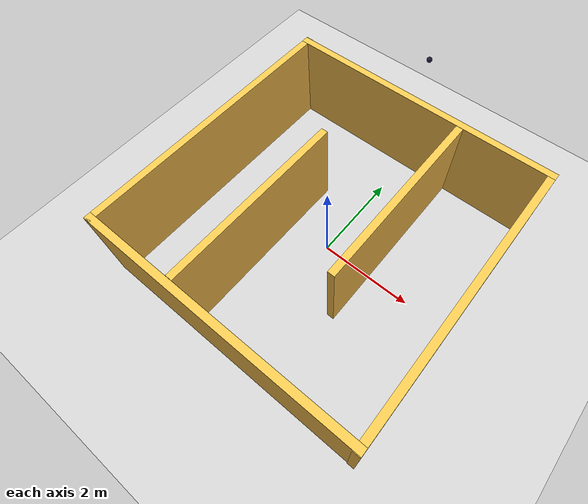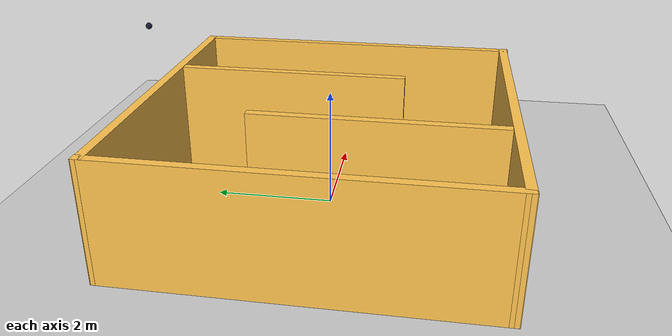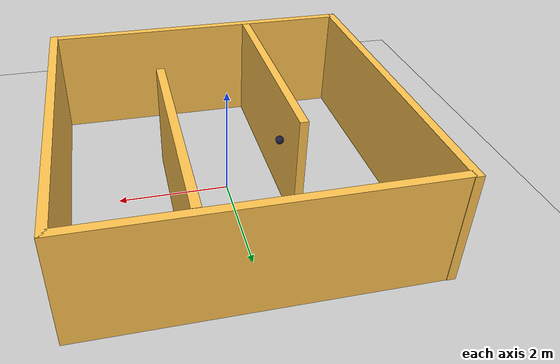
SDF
<?xml version="1.0" ?>
<sdf version="1.4">
  <world name="default">
    <include>
      <uri>model://ground_plane</uri>
    </include>
    <include>
      <uri>model://sun</uri>
    </include>

    <!-- Only one ROS interface plugin is required per world, as any other plugin can connect a Gazebo
         topic to a ROS topic (or vise versa). -->
    <plugin name="ros_interface_plugin" filename="librotors_gazebo_ros_interface_plugin.so"/>

    <spherical_coordinates>
      <surface_model>EARTH_WGS84</surface_model>
      <latitude_deg>47.3667</latitude_deg>
      <longitude_deg>8.5500</longitude_deg>
      <elevation>500.0</elevation>
      <heading_deg>0</heading_deg>
    </spherical_coordinates>
    <physics type='ode'>
      <ode>
        <solver>
          <type>quick</type>
          <iters>1000</iters>
          <sor>1.3</sor>
        </solver>
        <constraints>
          <cfm>0</cfm>
          <erp>0.2</erp>
          <contact_max_correcting_vel>100</contact_max_correcting_vel>
          <contact_surface_layer>0.001</contact_surface_layer>
        </constraints>
      </ode>
      <max_step_size>0.01</max_step_size>
      <real_time_factor>1</real_time_factor>
      <real_time_update_rate>100</real_time_update_rate>
      <gravity>0 0 -9.8</gravity>
    </physics>
    <model name="target">
      <pose>0 3.0 3.0 0 0 0</pose>
      <static>1</static>
      <link name="link">
        <collision name="collision">
          <geometry>
          <sphere>
            <radius>0.051</radius>
          </sphere>
        </geometry>
          <surface>
            <contact>
              <collide_without_contact>1</collide_without_contact>
            </contact>
          </surface>
        </collision>
        <visual name="visual">
          <material>
            <ambient>0.1 0.1 0.1 1</ambient>
            <diffuse>0.1 0.1 0.2 1</diffuse>
            <specular>0 1 1 0</specular>
            <emissive>0 1 0 1</emissive>
          </material>
          <geometry>
          <sphere>
            <radius>0.051</radius>
          </sphere>
        </geometry>
        </visual>
      </link>
    </model>
    <include>
      <uri>model://Circuit_main</uri>
      <pose>0 0 0 0 0 1.567</pose>
    </include>
    <model name="target">
      <pose>0 3.0 3.0 0 0 0</pose>
      <static>1</static>
      <link name="link">
        <collision name="collision">
          <geometry>
          <sphere>
            <radius>0.051</radius>
          </sphere>
        </geometry>
          <surface>
            <contact>
              <collide_without_contact>1</collide_without_contact>
            </contact>
          </surface>
        </collision>
        <visual name="visual">
          <material>
            <ambient>0.1 0.1 0.1 1</ambient>
            <diffuse>0.1 0.1 0.2 1</diffuse>
            <specular>0 1 1 0</specular>
            <emissive>0 1 0 1</emissive>
          </material>
          <geometry>
          <sphere>
            <radius>0.051</radius>
          </sphere>
        </geometry>
        </visual>
      </link>
    </model>
  </world>
</sdf>

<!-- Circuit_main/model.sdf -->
<sdf version='1.6'>
  <model name='Circuit_main'>
    <link name='Wall_10'>
      <pose frame=''>-0.0015 2.925 0.5 0 -0 3.14159</pose>
      <inertial>
        <mass>1</mass>
        <pose frame=''>0 0 0 0 -0 0</pose>
        <inertia>
          <ixx>1</ixx>
          <ixy>0</ixy>
          <ixz>0</ixz>
          <iyy>1</iyy>
          <iyz>0</iyz>
          <izz>1</izz>
        </inertia>
      </inertial>
      <self_collide>0</self_collide>
      <kinematic>0</kinematic>
      <visual name='ModelPreview_1::Wall_10::visual_2'>
        <pose frame=''>0 0 0.5 0 -0 0</pose>
        <geometry>
          <box>
            <size>6 0.15 2</size>
          </box>
        </geometry>
        <material>
          <script>
            <uri>file://media/materials/scripts/gazebo.material</uri>
            <name>Gazebo/Grey</name>
          </script>
          <ambient>1 0.765 0.306 1</ambient>
          <shader type='pixel'>
            <normal_map>__default__</normal_map>
          </shader>
          <diffuse>0.7 0.7 0.7 1</diffuse>
          <specular>0.01 0.01 0.01 1</specular>
          <emissive>0 0 0 1</emissive>
        </material>
        <cast_shadows>1</cast_shadows>
        <transparency>0</transparency>
      </visual>
      <visual name='ModelPreview_1::Wall_10::visual_4'>
        <pose frame=''>0 0 0.5 0 -0 0</pose>
        <geometry>
          <box>
            <size>6 0.15 2</size>
          </box>
        </geometry>
        <material>
          <script>
            <uri>file://media/materials/scripts/gazebo.material</uri>
            <name>Gazebo/Grey</name>
          </script>
          <ambient>1 0.765 0.306 1</ambient>
          <shader type='pixel'>
            <normal_map>__default__</normal_map>
          </shader>
          <diffuse>0.7 0.7 0.7 1</diffuse>
          <specular>0.01 0.01 0.01 1</specular>
          <emissive>0 0 0 1</emissive>
        </material>
        <cast_shadows>1</cast_shadows>
        <transparency>0</transparency>
      </visual>
      <visual name='ModelPreview_1::Wall_10::visual_3'>
        <pose frame=''>0 0 0.5 0 -0 0</pose>
        <geometry>
          <box>
            <size>6 0.15 2</size>
          </box>
        </geometry>
        <material>
          <script>
            <uri>file://media/materials/scripts/gazebo.material</uri>
            <name>Gazebo/Grey</name>
          </script>
          <ambient>1 0.765 0.306 1</ambient>
          <shader type='pixel'>
            <normal_map>__default__</normal_map>
          </shader>
          <diffuse>0.7 0.7 0.7 1</diffuse>
          <specular>0.01 0.01 0.01 1</specular>
          <emissive>0 0 0 1</emissive>
        </material>
        <cast_shadows>1</cast_shadows>
        <transparency>0</transparency>
      </visual>
      <visual name='ModelPreview_1::Wall_10::visual_1'>
        <pose frame=''>0 0 0.5 0 -0 0</pose>
        <geometry>
          <box>
            <size>6 0.15 2</size>
          </box>
        </geometry>
        <material>
          <script>
            <uri>file://media/materials/scripts/gazebo.material</uri>
            <name>Gazebo/Grey</name>
          </script>
          <ambient>1 0.765 0.306 1</ambient>
          <shader type='pixel'>
            <normal_map>__default__</normal_map>
          </shader>
          <diffuse>0.7 0.7 0.7 1</diffuse>
          <specular>0.01 0.01 0.01 1</specular>
          <emissive>0 0 0 1</emissive>
        </material>
        <cast_shadows>1</cast_shadows>
        <transparency>0</transparency>
      </visual>
      <visual name='Wall_10_Visual'>
        <pose frame=''>0 0 0.5 0 -0 0</pose>
        <geometry>
          <box>
            <size>6 0.15 2</size>
          </box>
        </geometry>
        <material>
          <script>
            <uri>file://media/materials/scripts/gazebo.material</uri>
            <name>Gazebo/Grey</name>
          </script>
          <ambient>1 0.765 0.306 1</ambient>
          <shader type='pixel'>
            <normal_map>__default__</normal_map>
          </shader>
          <diffuse>0.7 0.7 0.7 1</diffuse>
          <specular>0.01 0.01 0.01 1</specular>
          <emissive>0 0 0 1</emissive>
        </material>
        <cast_shadows>1</cast_shadows>
        <transparency>0</transparency>
      </visual>
      <collision name='Wall_10_Collision'>
        <laser_retro>0</laser_retro>
        <max_contacts>10</max_contacts>
        <pose frame=''>0 0 0.5 0 -0 0</pose>
        <geometry>
          <box>
            <size>6 0.15 2</size>
          </box>
        </geometry>
        <surface>
          <friction>
            <ode>
              <mu>1</mu>
              <mu2>1</mu2>
              <fdir1>0 0 0</fdir1>
              <slip1>0</slip1>
              <slip2>0</slip2>
            </ode>
            <torsional>
              <coefficient>1</coefficient>
              <patch_radius>0</patch_radius>
              <surface_radius>0</surface_radius>
              <use_patch_radius>1</use_patch_radius>
              <ode>
                <slip>0</slip>
              </ode>
            </torsional>
          </friction>
          <bounce>
            <restitution_coefficient>0</restitution_coefficient>
            <threshold>1e+06</threshold>
          </bounce>
          <contact>
            <collide_without_contact>0</collide_without_contact>
            <collide_without_contact_bitmask>1</collide_without_contact_bitmask>
            <collide_bitmask>1</collide_bitmask>
            <ode>
              <soft_cfm>0</soft_cfm>
              <soft_erp>0.2</soft_erp>
              <kp>1e+13</kp>
              <kd>1</kd>
              <max_vel>0.01</max_vel>
              <min_depth>0</min_depth>
            </ode>
            <bullet>
              <split_impulse>1</split_impulse>
              <split_impulse_penetration_threshold>-0.01</split_impulse_penetration_threshold>
              <soft_cfm>0</soft_cfm>
              <soft_erp>0.2</soft_erp>
              <kp>1e+13</kp>
              <kd>1</kd>
            </bullet>
          </contact>
        </surface>
      </collision>
    </link>
    <link name='Wall_10_clone'>
      <pose frame=''>-0.0015 -2.925 0.5 0 -0 0</pose>
      <inertial>
        <mass>1</mass>
        <pose frame=''>0 0 0 0 -0 0</pose>
        <inertia>
          <ixx>1</ixx>
          <ixy>0</ixy>
          <ixz>0</ixz>
          <iyy>1</iyy>
          <iyz>0</iyz>
          <izz>1</izz>
        </inertia>
      </inertial>
      <self_collide>0</self_collide>
      <kinematic>0</kinematic>
      <visual name='visual_3'>
        <pose frame=''>0 0 0.5 0 -0 0</pose>
        <geometry>
          <box>
            <size>6 0.15 2</size>
          </box>
        </geometry>
        <material>
          <script>
            <uri>file://media/materials/scripts/gazebo.material</uri>
            <name>Gazebo/Grey</name>
          </script>
          <ambient>1 0.765 0.306 1</ambient>
          <shader type='pixel'>
            <normal_map>__default__</normal_map>
          </shader>
          <diffuse>0.7 0.7 0.7 1</diffuse>
          <specular>0.01 0.01 0.01 1</specular>
          <emissive>0 0 0 1</emissive>
        </material>
        <cast_shadows>1</cast_shadows>
        <transparency>0</transparency>
      </visual>
      <visual name='Wall_10_Visual'>
        <pose frame=''>0 0 0.5 0 -0 0</pose>
        <geometry>
          <box>
            <size>6 0.15 2</size>
          </box>
        </geometry>
        <material>
          <script>
            <uri>file://media/materials/scripts/gazebo.material</uri>
            <name>Gazebo/Grey</name>
          </script>
          <ambient>1 0.765 0.306 1</ambient>
          <shader type='pixel'>
            <normal_map>__default__</normal_map>
          </shader>
          <diffuse>0.7 0.7 0.7 1</diffuse>
          <specular>0.01 0.01 0.01 1</specular>
          <emissive>0 0 0 1</emissive>
        </material>
        <cast_shadows>1</cast_shadows>
        <transparency>0</transparency>
      </visual>
      <visual name='visual_2'>
        <pose frame=''>0 0 0.5 0 -0 0</pose>
        <geometry>
          <box>
            <size>6 0.15 2</size>
          </box>
        </geometry>
        <material>
          <script>
            <uri>file://media/materials/scripts/gazebo.material</uri>
            <name>Gazebo/Grey</name>
          </script>
          <ambient>1 0.765 0.306 1</ambient>
          <shader type='pixel'>
            <normal_map>__default__</normal_map>
          </shader>
          <diffuse>0.7 0.7 0.7 1</diffuse>
          <specular>0.01 0.01 0.01 1</specular>
          <emissive>0 0 0 1</emissive>
        </material>
        <cast_shadows>1</cast_shadows>
        <transparency>0</transparency>
      </visual>
      <visual name='visual_4'>
        <pose frame=''>0 0 0.5 0 -0 0</pose>
        <geometry>
          <box>
            <size>6 0.15 2</size>
          </box>
        </geometry>
        <material>
          <script>
            <uri>file://media/materials/scripts/gazebo.material</uri>
            <name>Gazebo/Grey</name>
          </script>
          <ambient>1 0.765 0.306 1</ambient>
          <shader type='pixel'>
            <normal_map>__default__</normal_map>
          </shader>
          <diffuse>0.7 0.7 0.7 1</diffuse>
          <specular>0.01 0.01 0.01 1</specular>
          <emissive>0 0 0 1</emissive>
        </material>
        <cast_shadows>1</cast_shadows>
        <transparency>0</transparency>
      </visual>
      <visual name='visual_1'>
        <pose frame=''>0 0 0.5 0 -0 0</pose>
        <geometry>
          <box>
            <size>6 0.15 2</size>
          </box>
        </geometry>
        <material>
          <script>
            <uri>file://media/materials/scripts/gazebo.material</uri>
            <name>Gazebo/Grey</name>
          </script>
          <ambient>1 0.765 0.306 1</ambient>
          <shader type='pixel'>
            <normal_map>__default__</normal_map>
          </shader>
          <diffuse>0.7 0.7 0.7 1</diffuse>
          <specular>0.01 0.01 0.01 1</specular>
          <emissive>0 0 0 1</emissive>
        </material>
        <cast_shadows>1</cast_shadows>
        <transparency>0</transparency>
      </visual>
      <collision name='Wall_10_Collision'>
        <laser_retro>0</laser_retro>
        <max_contacts>10</max_contacts>
        <pose frame=''>0 0 0.5 0 -0 0</pose>
        <geometry>
          <box>
            <size>6 0.15 2</size>
          </box>
        </geometry>
        <surface>
          <friction>
            <ode>
              <mu>1</mu>
              <mu2>1</mu2>
              <fdir1>0 0 0</fdir1>
              <slip1>0</slip1>
              <slip2>0</slip2>
            </ode>
            <torsional>
              <coefficient>1</coefficient>
              <patch_radius>0</patch_radius>
              <surface_radius>0</surface_radius>
              <use_patch_radius>1</use_patch_radius>
              <ode>
                <slip>0</slip>
              </ode>
            </torsional>
          </friction>
          <bounce>
            <restitution_coefficient>0</restitution_coefficient>
            <threshold>1e+06</threshold>
          </bounce>
          <contact>
            <collide_without_contact>0</collide_without_contact>
            <collide_without_contact_bitmask>1</collide_without_contact_bitmask>
            <collide_bitmask>1</collide_bitmask>
            <ode>
              <soft_cfm>0</soft_cfm>
              <soft_erp>0.2</soft_erp>
              <kp>1e+13</kp>
              <kd>1</kd>
              <max_vel>0.01</max_vel>
              <min_depth>0</min_depth>
            </ode>
            <bullet>
              <split_impulse>1</split_impulse>
              <split_impulse_penetration_threshold>-0.01</split_impulse_penetration_threshold>
              <soft_cfm>0</soft_cfm>
              <soft_erp>0.2</soft_erp>
              <kp>1e+13</kp>
              <kd>1</kd>
            </bullet>
          </contact>
        </surface>
      </collision>
    </link>
    <link name='Wall_10_clone_clone'>
      <pose frame=''>-2.925 -0 0.5 0 0 -1.567</pose>
      <inertial>
        <mass>1</mass>
        <pose frame=''>0 0 0 0 -0 0</pose>
        <inertia>
          <ixx>1</ixx>
          <ixy>0</ixy>
          <ixz>0</ixz>
          <iyy>1</iyy>
          <iyz>0</iyz>
          <izz>1</izz>
        </inertia>
      </inertial>
      <self_collide>0</self_collide>
      <kinematic>0</kinematic>
      <visual name='Wall_10_Visual'>
        <pose frame=''>0 0 0.5 0 -0 0</pose>
        <geometry>
          <box>
            <size>6 0.15 2</size>
          </box>
        </geometry>
        <material>
          <script>
            <uri>file://media/materials/scripts/gazebo.material</uri>
            <name>Gazebo/Grey</name>
          </script>
          <ambient>1 0.765 0.306 1</ambient>
          <shader type='pixel'>
            <normal_map>__default__</normal_map>
          </shader>
          <diffuse>0.7 0.7 0.7 1</diffuse>
          <specular>0.01 0.01 0.01 1</specular>
          <emissive>0 0 0 1</emissive>
        </material>
        <cast_shadows>1</cast_shadows>
        <transparency>0</transparency>
      </visual>
      <visual name='visual_4'>
        <pose frame=''>0 0 0.5 0 -0 0</pose>
        <geometry>
          <box>
            <size>6 0.15 2</size>
          </box>
        </geometry>
        <material>
          <script>
            <uri>file://media/materials/scripts/gazebo.material</uri>
            <name>Gazebo/Grey</name>
          </script>
          <ambient>1 0.765 0.306 1</ambient>
          <shader type='pixel'>
            <normal_map>__default__</normal_map>
          </shader>
          <diffuse>0.7 0.7 0.7 1</diffuse>
          <specular>0.01 0.01 0.01 1</specular>
          <emissive>0 0 0 1</emissive>
        </material>
        <cast_shadows>1</cast_shadows>
        <transparency>0</transparency>
      </visual>
      <visual name='visual_3'>
        <pose frame=''>0 0 0.5 0 -0 0</pose>
        <geometry>
          <box>
            <size>6 0.15 2</size>
          </box>
        </geometry>
        <material>
          <script>
            <uri>file://media/materials/scripts/gazebo.material</uri>
            <name>Gazebo/Grey</name>
          </script>
          <ambient>1 0.765 0.306 1</ambient>
          <shader type='pixel'>
            <normal_map>__default__</normal_map>
          </shader>
          <diffuse>0.7 0.7 0.7 1</diffuse>
          <specular>0.01 0.01 0.01 1</specular>
          <emissive>0 0 0 1</emissive>
        </material>
        <cast_shadows>1</cast_shadows>
        <transparency>0</transparency>
      </visual>
      <visual name='visual_1'>
        <pose frame=''>0 0 0.5 0 -0 0</pose>
        <geometry>
          <box>
            <size>6 0.15 2</size>
          </box>
        </geometry>
        <material>
          <script>
            <uri>file://media/materials/scripts/gazebo.material</uri>
            <name>Gazebo/Grey</name>
          </script>
          <ambient>1 0.765 0.306 1</ambient>
          <shader type='pixel'>
            <normal_map>__default__</normal_map>
          </shader>
          <diffuse>0.7 0.7 0.7 1</diffuse>
          <specular>0.01 0.01 0.01 1</specular>
          <emissive>0 0 0 1</emissive>
        </material>
        <cast_shadows>1</cast_shadows>
        <transparency>0</transparency>
      </visual>
      <visual name='visual_2'>
        <pose frame=''>0 0 0.5 0 -0 0</pose>
        <geometry>
          <box>
            <size>6 0.15 2</size>
          </box>
        </geometry>
        <material>
          <script>
            <uri>file://media/materials/scripts/gazebo.material</uri>
            <name>Gazebo/Grey</name>
          </script>
          <ambient>1 0.765 0.306 1</ambient>
          <shader type='pixel'>
            <normal_map>__default__</normal_map>
          </shader>
          <diffuse>0.7 0.7 0.7 1</diffuse>
          <specular>0.01 0.01 0.01 1</specular>
          <emissive>0 0 0 1</emissive>
        </material>
        <cast_shadows>1</cast_shadows>
        <transparency>0</transparency>
      </visual>
      <collision name='Wall_10_Collision'>
        <laser_retro>0</laser_retro>
        <max_contacts>10</max_contacts>
        <pose frame=''>0 0 0.5 0 -0 0</pose>
        <geometry>
          <box>
            <size>6 0.15 2</size>
          </box>
        </geometry>
        <surface>
          <friction>
            <ode>
              <mu>1</mu>
              <mu2>1</mu2>
              <fdir1>0 0 0</fdir1>
              <slip1>0</slip1>
              <slip2>0</slip2>
            </ode>
            <torsional>
              <coefficient>1</coefficient>
              <patch_radius>0</patch_radius>
              <surface_radius>0</surface_radius>
              <use_patch_radius>1</use_patch_radius>
              <ode>
                <slip>0</slip>
              </ode>
            </torsional>
          </friction>
          <bounce>
            <restitution_coefficient>0</restitution_coefficient>
            <threshold>1e+06</threshold>
          </bounce>
          <contact>
            <collide_without_contact>0</collide_without_contact>
            <collide_without_contact_bitmask>1</collide_without_contact_bitmask>
            <collide_bitmask>1</collide_bitmask>
            <ode>
              <soft_cfm>0</soft_cfm>
              <soft_erp>0.2</soft_erp>
              <kp>1e+13</kp>
              <kd>1</kd>
              <max_vel>0.01</max_vel>
              <min_depth>0</min_depth>
            </ode>
            <bullet>
              <split_impulse>1</split_impulse>
              <split_impulse_penetration_threshold>-0.01</split_impulse_penetration_threshold>
              <soft_cfm>0</soft_cfm>
              <soft_erp>0.2</soft_erp>
              <kp>1e+13</kp>
              <kd>1</kd>
            </bullet>
          </contact>
        </surface>
      </collision>
    </link>
    <link name='Wall_10_clone_clone_0'>
      <pose frame=''>2.925 0 0.5 0 0 -1.567</pose>
      <inertial>
        <mass>1</mass>
        <pose frame=''>0 0 0 0 -0 0</pose>
        <inertia>
          <ixx>1</ixx>
          <ixy>0</ixy>
          <ixz>0</ixz>
          <iyy>1</iyy>
          <iyz>0</iyz>
          <izz>1</izz>
        </inertia>
      </inertial>
      <self_collide>0</self_collide>
      <kinematic>0</kinematic>
      <visual name='visual_2'>
        <pose frame=''>0 0 0.5 0 -0 0</pose>
        <geometry>
          <box>
            <size>6 0.15 2</size>
          </box>
        </geometry>
        <material>
          <script>
            <uri>file://media/materials/scripts/gazebo.material</uri>
            <name>Gazebo/Grey</name>
          </script>
          <ambient>1 0.765 0.306 1</ambient>
          <shader type='pixel'>
            <normal_map>__default__</normal_map>
          </shader>
          <diffuse>0.7 0.7 0.7 1</diffuse>
          <specular>0.01 0.01 0.01 1</specular>
          <emissive>0 0 0 1</emissive>
        </material>
        <cast_shadows>1</cast_shadows>
        <transparency>0</transparency>
      </visual>
      <visual name='Wall_10_Visual'>
        <pose frame=''>0 0 0.5 0 -0 0</pose>
        <geometry>
          <box>
            <size>6 0.15 2</size>
          </box>
        </geometry>
        <material>
          <script>
            <uri>file://media/materials/scripts/gazebo.material</uri>
            <name>Gazebo/Grey</name>
          </script>
          <ambient>1 0.765 0.306 1</ambient>
          <shader type='pixel'>
            <normal_map>__default__</normal_map>
          </shader>
          <diffuse>0.7 0.7 0.7 1</diffuse>
          <specular>0.01 0.01 0.01 1</specular>
          <emissive>0 0 0 1</emissive>
        </material>
        <cast_shadows>1</cast_shadows>
        <transparency>0</transparency>
      </visual>
      <visual name='visual_3'>
        <pose frame=''>0 0 0.5 0 -0 0</pose>
        <geometry>
          <box>
            <size>6 0.15 2</size>
          </box>
        </geometry>
        <material>
          <script>
            <uri>file://media/materials/scripts/gazebo.material</uri>
            <name>Gazebo/Grey</name>
          </script>
          <ambient>1 0.765 0.306 1</ambient>
          <shader type='pixel'>
            <normal_map>__default__</normal_map>
          </shader>
          <diffuse>0.7 0.7 0.7 1</diffuse>
          <specular>0.01 0.01 0.01 1</specular>
          <emissive>0 0 0 1</emissive>
        </material>
        <cast_shadows>1</cast_shadows>
        <transparency>0</transparency>
      </visual>
      <visual name='visual_4'>
        <pose frame=''>0 0 0.5 0 -0 0</pose>
        <geometry>
          <box>
            <size>6 0.15 2</size>
          </box>
        </geometry>
        <material>
          <script>
            <uri>file://media/materials/scripts/gazebo.material</uri>
            <name>Gazebo/Grey</name>
          </script>
          <ambient>1 0.765 0.306 1</ambient>
          <shader type='pixel'>
            <normal_map>__default__</normal_map>
          </shader>
          <diffuse>0.7 0.7 0.7 1</diffuse>
          <specular>0.01 0.01 0.01 1</specular>
          <emissive>0 0 0 1</emissive>
        </material>
        <cast_shadows>1</cast_shadows>
        <transparency>0</transparency>
      </visual>
      <visual name='visual_1'>
        <pose frame=''>0 0 0.5 0 -0 0</pose>
        <geometry>
          <box>
            <size>6 0.15 2</size>
          </box>
        </geometry>
        <material>
          <script>
            <uri>file://media/materials/scripts/gazebo.material</uri>
            <name>Gazebo/Grey</name>
          </script>
          <ambient>1 0.765 0.306 1</ambient>
          <shader type='pixel'>
            <normal_map>__default__</normal_map>
          </shader>
          <diffuse>0.7 0.7 0.7 1</diffuse>
          <specular>0.01 0.01 0.01 1</specular>
          <emissive>0 0 0 1</emissive>
        </material>
        <cast_shadows>1</cast_shadows>
        <transparency>0</transparency>
      </visual>
      <collision name='Wall_10_Collision'>
        <laser_retro>0</laser_retro>
        <max_contacts>10</max_contacts>
        <pose frame=''>0 0 0.5 0 -0 0</pose>
        <geometry>
          <box>
            <size>6 0.15 2</size>
          </box>
        </geometry>
        <surface>
          <friction>
            <ode>
              <mu>1</mu>
              <mu2>1</mu2>
              <fdir1>0 0 0</fdir1>
              <slip1>0</slip1>
              <slip2>0</slip2>
            </ode>
            <torsional>
              <coefficient>1</coefficient>
              <patch_radius>0</patch_radius>
              <surface_radius>0</surface_radius>
              <use_patch_radius>1</use_patch_radius>
              <ode>
                <slip>0</slip>
              </ode>
            </torsional>
          </friction>
          <bounce>
            <restitution_coefficient>0</restitution_coefficient>
            <threshold>1e+06</threshold>
          </bounce>
          <contact>
            <collide_without_contact>0</collide_without_contact>
            <collide_without_contact_bitmask>1</collide_without_contact_bitmask>
            <collide_bitmask>1</collide_bitmask>
            <ode>
              <soft_cfm>0</soft_cfm>
              <soft_erp>0.2</soft_erp>
              <kp>1e+13</kp>
              <kd>1</kd>
              <max_vel>0.01</max_vel>
              <min_depth>0</min_depth>
            </ode>
            <bullet>
              <split_impulse>1</split_impulse>
              <split_impulse_penetration_threshold>-0.01</split_impulse_penetration_threshold>
              <soft_cfm>0</soft_cfm>
              <soft_erp>0.2</soft_erp>
              <kp>1e+13</kp>
              <kd>1</kd>
            </bullet>
          </contact>
        </surface>
      </collision>
    </link>
    <link name='Wall_15_clone'>
      <pose frame=''>-0.85 1 0.5 0 -0 0</pose>
      <inertial>
        <mass>1</mass>
        <pose frame=''>0 0 0 0 -0 0</pose>
        <inertia>
          <ixx>1</ixx>
          <ixy>0</ixy>
          <ixz>0</ixz>
          <iyy>1</iyy>
          <iyz>0</iyz>
          <izz>1</izz>
        </inertia>
      </inertial>
      <self_collide>0</self_collide>
      <kinematic>0</kinematic>
      <visual name='ModelPreview_1::Wall_15_clone::visual_7'>
        <pose frame=''>0 0 0.5 0 -0 0</pose>
        <geometry>
          <box>
            <size>4 0.15 2</size>
          </box>
        </geometry>
        <material>
          <script>
            <uri>file://media/materials/scripts/gazebo.material</uri>
            <name>Gazebo/Grey</name>
          </script>
          <ambient>1 0.765 0.306 1</ambient>
          <shader type='pixel'>
            <normal_map>__default__</normal_map>
          </shader>
          <diffuse>0.7 0.7 0.7 1</diffuse>
          <specular>0.01 0.01 0.01 1</specular>
          <emissive>0 0 0 1</emissive>
        </material>
        <cast_shadows>1</cast_shadows>
        <transparency>0</transparency>
      </visual>
      <visual name='ModelPreview_1::Wall_15_clone::visual_6'>
        <pose frame=''>0 0 0.5 0 -0 0</pose>
        <geometry>
          <box>
            <size>4 0.15 2</size>
          </box>
        </geometry>
        <material>
          <script>
            <uri>file://media/materials/scripts/gazebo.material</uri>
            <name>Gazebo/Grey</name>
          </script>
          <ambient>1 0.765 0.306 1</ambient>
          <shader type='pixel'>
            <normal_map>__default__</normal_map>
          </shader>
          <diffuse>0.7 0.7 0.7 1</diffuse>
          <specular>0.01 0.01 0.01 1</specular>
          <emissive>0 0 0 1</emissive>
        </material>
        <cast_shadows>1</cast_shadows>
        <transparency>0</transparency>
      </visual>
      <visual name='ModelPreview_1::Wall_15_clone::Wall_15_Visual'>
        <pose frame=''>0 0 0.5 0 -0 0</pose>
        <geometry>
          <box>
            <size>4 0.15 2</size>
          </box>
        </geometry>
        <material>
          <script>
            <uri>file://media/materials/scripts/gazebo.material</uri>
            <name>Gazebo/Grey</name>
          </script>
          <ambient>1 0.765 0.306 1</ambient>
          <shader type='pixel'>
            <normal_map>__default__</normal_map>
          </shader>
          <diffuse>0.7 0.7 0.7 1</diffuse>
          <specular>0.01 0.01 0.01 1</specular>
          <emissive>0 0 0 1</emissive>
        </material>
        <cast_shadows>1</cast_shadows>
        <transparency>0</transparency>
      </visual>
      <collision name='Wall_15_Collision'>
        <laser_retro>0</laser_retro>
        <max_contacts>10</max_contacts>
        <pose frame=''>0 0 0.5 0 -0 0</pose>
        <geometry>
          <box>
            <size>4 0.15 2</size>
          </box>
        </geometry>
        <surface>
          <friction>
            <ode>
              <mu>1</mu>
              <mu2>1</mu2>
              <fdir1>0 0 0</fdir1>
              <slip1>0</slip1>
              <slip2>0</slip2>
            </ode>
            <torsional>
              <coefficient>1</coefficient>
              <patch_radius>0</patch_radius>
              <surface_radius>0</surface_radius>
              <use_patch_radius>1</use_patch_radius>
              <ode>
                <slip>0</slip>
              </ode>
            </torsional>
          </friction>
          <bounce>
            <restitution_coefficient>0</restitution_coefficient>
            <threshold>1e+06</threshold>
          </bounce>
          <contact>
            <collide_without_contact>0</collide_without_contact>
            <collide_without_contact_bitmask>1</collide_without_contact_bitmask>
            <collide_bitmask>1</collide_bitmask>
            <ode>
              <soft_cfm>0</soft_cfm>
              <soft_erp>0.2</soft_erp>
              <kp>1e+13</kp>
              <kd>1</kd>
              <max_vel>0.01</max_vel>
              <min_depth>0</min_depth>
            </ode>
            <bullet>
              <split_impulse>1</split_impulse>
              <split_impulse_penetration_threshold>-0.01</split_impulse_penetration_threshold>
              <soft_cfm>0</soft_cfm>
              <soft_erp>0.2</soft_erp>
              <kp>1e+13</kp>
              <kd>1</kd>
            </bullet>
          </contact>
        </surface>
      </collision>
    </link>
    <link name='Wall_15_clone_clone'>
      <pose frame=''>0.85 -1 0.5 0 -0 0</pose>
      <inertial>
        <mass>1</mass>
        <pose frame=''>0 0 0 0 -0 0</pose>
        <inertia>
          <ixx>1</ixx>
          <ixy>0</ixy>
          <ixz>0</ixz>
          <iyy>1</iyy>
          <iyz>0</iyz>
          <izz>1</izz>
        </inertia>
      </inertial>
      <self_collide>0</self_collide>
      <kinematic>0</kinematic>
      <visual name='visual_7'>
        <pose frame=''>0 0 0.5 0 -0 0</pose>
        <geometry>
          <box>
            <size>4 0.15 2</size>
          </box>
        </geometry>
        <material>
          <script>
            <uri>file://media/materials/scripts/gazebo.material</uri>
            <name>Gazebo/Grey</name>
          </script>
          <ambient>1 0.765 0.306 1</ambient>
          <shader type='pixel'>
            <normal_map>__default__</normal_map>
          </shader>
          <diffuse>0.7 0.7 0.7 1</diffuse>
          <specular>0.01 0.01 0.01 1</specular>
          <emissive>0 0 0 1</emissive>
        </material>
        <cast_shadows>1</cast_shadows>
        <transparency>0</transparency>
      </visual>
      <visual name='visual_6'>
        <pose frame=''>0 0 0.5 0 -0 0</pose>
        <geometry>
          <box>
            <size>4 0.15 2</size>
          </box>
        </geometry>
        <material>
          <script>
            <uri>file://media/materials/scripts/gazebo.material</uri>
            <name>Gazebo/Grey</name>
          </script>
          <ambient>1 0.765 0.306 1</ambient>
          <shader type='pixel'>
            <normal_map>__default__</normal_map>
          </shader>
          <diffuse>0.7 0.7 0.7 1</diffuse>
          <specular>0.01 0.01 0.01 1</specular>
          <emissive>0 0 0 1</emissive>
        </material>
        <cast_shadows>1</cast_shadows>
        <transparency>0</transparency>
      </visual>
      <visual name='Wall_15_Visual'>
        <pose frame=''>0 0 0.5 0 -0 0</pose>
        <geometry>
          <box>
            <size>4 0.15 2</size>
          </box>
        </geometry>
        <material>
          <script>
            <uri>file://media/materials/scripts/gazebo.material</uri>
            <name>Gazebo/Grey</name>
          </script>
          <ambient>1 0.765 0.306 1</ambient>
          <shader type='pixel'>
            <normal_map>__default__</normal_map>
          </shader>
          <diffuse>0.7 0.7 0.7 1</diffuse>
          <specular>0.01 0.01 0.01 1</specular>
          <emissive>0 0 0 1</emissive>
        </material>
        <cast_shadows>1</cast_shadows>
        <transparency>0</transparency>
      </visual>
      <collision name='Wall_15_Collision'>
        <laser_retro>0</laser_retro>
        <max_contacts>10</max_contacts>
        <pose frame=''>0 0 0.5 0 -0 0</pose>
        <geometry>
          <box>
            <size>4 0.15 2</size>
          </box>
        </geometry>
        <surface>
          <friction>
            <ode>
              <mu>1</mu>
              <mu2>1</mu2>
              <fdir1>0 0 0</fdir1>
              <slip1>0</slip1>
              <slip2>0</slip2>
            </ode>
            <torsional>
              <coefficient>1</coefficient>
              <patch_radius>0</patch_radius>
              <surface_radius>0</surface_radius>
              <use_patch_radius>1</use_patch_radius>
              <ode>
                <slip>0</slip>
              </ode>
            </torsional>
          </friction>
          <bounce>
            <restitution_coefficient>0</restitution_coefficient>
            <threshold>1e+06</threshold>
          </bounce>
          <contact>
            <collide_without_contact>0</collide_without_contact>
            <collide_without_contact_bitmask>1</collide_without_contact_bitmask>
            <collide_bitmask>1</collide_bitmask>
            <ode>
              <soft_cfm>0</soft_cfm>
              <soft_erp>0.2</soft_erp>
              <kp>1e+13</kp>
              <kd>1</kd>
              <max_vel>0.01</max_vel>
              <min_depth>0</min_depth>
            </ode>
            <bullet>
              <split_impulse>1</split_impulse>
              <split_impulse_penetration_threshold>-0.01</split_impulse_penetration_threshold>
              <soft_cfm>0</soft_cfm>
              <soft_erp>0.2</soft_erp>
              <kp>1e+13</kp>
              <kd>1</kd>
            </bullet>
          </contact>
        </surface>
      </collision>
    </link>
    <link name='link_0'>
      <pose frame=''>0 0 2 0 -0 0</pose>
      <inertial>
        <mass>1</mass>
        <inertia>
          <ixx>0.166667</ixx>
          <ixy>0</ixy>
          <ixz>0</ixz>
          <iyy>0.166667</iyy>
          <iyz>0</iyz>
          <izz>0.166667</izz>
        </inertia>
        <pose frame=''>0 0 0 0 -0 0</pose>
      </inertial>
      <self_collide>0</self_collide>
      <kinematic>0</kinematic>
      <gravity>1</gravity>
      <visual name='ModelPreview_4::link_0::visual_1'>
        <pose frame=''>0 0 0 0 -0 0</pose>
        <geometry>
          <box>
            <size>5.85 5.85 0.1</size>
          </box>
        </geometry>
        <material>
          <lighting>1</lighting>
          <script>
            <uri>file://media/materials/scripts/gazebo.material</uri>
            <name>Gazebo/Grey</name>
          </script>
          <ambient>0.3 0.3 0.3 1</ambient>
          <diffuse>0.7 0.7 0.7 1</diffuse>
          <specular>0.01 0.01 0.01 1</specular>
          <emissive>0 0 0 1</emissive>
          <shader type='vertex'>
            <normal_map>__default__</normal_map>
          </shader>
        </material>
        <cast_shadows>1</cast_shadows>
        <transparency>1</transparency>
      </visual>
      <visual name='visual'>
        <pose frame=''>0 0 0 0 -0 0</pose>
        <geometry>
          <box>
            <size>5.85 5.85 0.1</size>
          </box>
        </geometry>
        <material>
          <lighting>1</lighting>
          <script>
            <uri>file://media/materials/scripts/gazebo.material</uri>
            <name>Gazebo/Grey</name>
          </script>
          <ambient>0.3 0.3 0.3 1</ambient>
          <diffuse>0.7 0.7 0.7 1</diffuse>
          <specular>0.01 0.01 0.01 1</specular>
          <emissive>0 0 0 1</emissive>
          <shader type='vertex'>
            <normal_map>__default__</normal_map>
          </shader>
        </material>
        <cast_shadows>1</cast_shadows>
        <transparency>1</transparency>
      </visual>
      <collision name='collision'>
        <laser_retro>0</laser_retro>
        <max_contacts>10</max_contacts>
        <pose frame=''>0 0 0 0 -0 0</pose>
        <geometry>
          <box>
            <size>5.85 5.85 0.1</size>
          </box>
        </geometry>
        <surface>
          <friction>
            <ode>
              <mu>1</mu>
              <mu2>1</mu2>
              <fdir1>0 0 0</fdir1>
              <slip1>0</slip1>
              <slip2>0</slip2>
            </ode>
            <torsional>
              <coefficient>1</coefficient>
              <patch_radius>0</patch_radius>
              <surface_radius>0</surface_radius>
              <use_patch_radius>1</use_patch_radius>
              <ode>
                <slip>0</slip>
              </ode>
            </torsional>
          </friction>
          <bounce>
            <restitution_coefficient>0</restitution_coefficient>
            <threshold>1e+06</threshold>
          </bounce>
          <contact>
            <collide_without_contact>0</collide_without_contact>
            <collide_without_contact_bitmask>1</collide_without_contact_bitmask>
            <collide_bitmask>1</collide_bitmask>
            <ode>
              <soft_cfm>0</soft_cfm>
              <soft_erp>0.2</soft_erp>
              <kp>1e+13</kp>
              <kd>1</kd>
              <max_vel>0.01</max_vel>
              <min_depth>0</min_depth>
            </ode>
            <bullet>
              <split_impulse>1</split_impulse>
              <split_impulse_penetration_threshold>-0.01</split_impulse_penetration_threshold>
              <soft_cfm>0</soft_cfm>
              <soft_erp>0.2</soft_erp>
              <kp>1e+13</kp>
              <kd>1</kd>
            </bullet>
          </contact>
        </surface>
      </collision>
    </link>
    <static>1</static>
    <allow_auto_disable>1</allow_auto_disable>
  </model>
</sdf>
